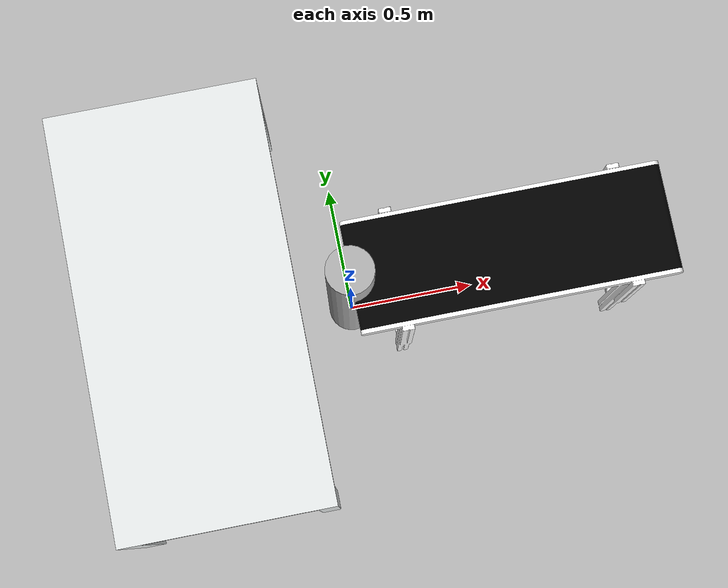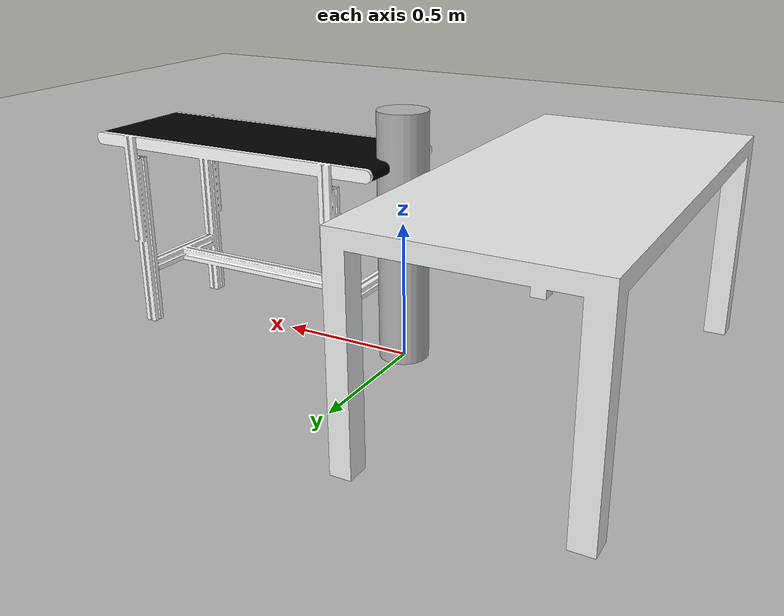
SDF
<?xml version="1.0" ?>
<sdf version="1.8">
  <world name="default">
    <!-- Plugins -->
    <plugin filename="gz-sim-physics-system" name="gz::sim::systems::Physics">
    </plugin>
    <plugin filename="gz-sim-user-commands-system" name="gz::sim::systems::UserCommands">
    </plugin>
    <plugin filename="gz-sim-scene-broadcaster-system" name="gz::sim::systems::SceneBroadcaster">
    </plugin>
    <plugin filename="gz-sim-sensors-system" name="gz::sim::systems::Sensors">
      <render_engine>ogre2</render_engine>
    </plugin>
    <plugin filename="libgz_link_attacher.so" name="gz_link_attacher::LinkAttacher">
      <robot_model_name>ur10_suction</robot_model_name>
      <gripper_link_name>ls_vgr_link</gripper_link_name>
    </plugin>

    <plugin filename="gz-sim-contact-system" name="gz::sim::systems::Contact">
    </plugin>

    <!-- Scene -->
    <scene>
      <ambient>0.4 0.4 0.4 1</ambient>
      <background>0.7 0.7 0.7 1</background>
      <shadows>true</shadows>
      <grid>false</grid>
    </scene>

    <!-- Light -->
    <light type="directional" name="sun">
      <cast_shadows>true</cast_shadows>
      <pose>0 0 10 0 0 0</pose>
      <diffuse>0.8 0.8 0.8 1</diffuse>
      <specular>0.2 0.2 0.2 1</specular>
      <direction>-0.5 0.1 -0.9</direction>
      <visualize>false</visualize>
    </light>

    <!-- Ground Plane -->
    <model name="ground_plane">
      <static>true</static>
      <link name="link">
        <collision name="collision">
          <geometry>
            <plane>
              <normal>0 0 1</normal>
              <size>100 100</size>
            </plane>
          </geometry>
        </collision>
        <visual name="visual">
          <geometry>
            <plane>
              <normal>0 0 1</normal>
              <size>100 100</size>
            </plane>
          </geometry>
          <material>
            <ambient>0.8 0.8 0.8 1</ambient>
            <diffuse>0.8 0.8 0.8 1</diffuse>
            <specular>0.8 0.8 0.8 1</specular>
          </material>
        </visual>
      </link>
    </model>

    <!-- Conveyor (moving belt, driven by TrackController; see CustomRobots/palletizing/models/conveyor_belt) -->
    <!-- Named "conveyor" so the command topic is /model/conveyor/link/link/track_cmd_vel -->
    <include>
      <uri>model://conveyor_belt</uri>
      <name>conveyor</name>
      <pose>0.6 0 0 0 0 1.57</pose>
    </include>

    <!-- Ground Logo Big -->
    <model name="ground_logo_big">
      <static>true</static>
      <pose>-0.5 0 0 0 0 1.57</pose>
      <link name="link">
        <visual name="visual">
          <pose>0 0 0.001 0 0 0</pose>
          <geometry>
            <mesh>
              <scale>1 1 1</scale>
              <uri>model://ground_logo_big/meshes/ground_logo.dae</uri>
            </mesh>
          </geometry>
        </visual>
      </link>
    </model>

    <!-- Pallet Table (target platform for stacking) -->
    <model name="target_table">
      <static>true</static>
      <pose>-0.6 0 0 0 0 1.57</pose>
      <link name="link">
        <visual name="visual">
          <pose>0 0 0.73 0 0 1.57</pose>
          <geometry>
            <mesh>
              <scale>1 1 1</scale>
              <uri>model://target_table/meshes/target_table.dae</uri>
            </mesh>
          </geometry>
        </visual>
        <collision name="collision_0">
          <pose>0 0 0.73 0 0 0</pose>
          <geometry>
            <box>
              <size>0.8 1.6 0.06</size>
            </box>
          </geometry>
        </collision>
      </link>
    </model>

    <!-- Robot Base (Placeholder) -->
    <model name="robotbase">
      <static>true</static>
      <pose>0 0 0 0 0 0</pose>
      <link name="link">
        <pose>0 0 0.45 0 0 0</pose>
        <visual name="visual">
          <geometry>
            <cylinder>
              <radius>0.09</radius>
              <length>0.9</length>
            </cylinder>
          </geometry>
          <material>
            <ambient>0.3 0.3 0.3 1</ambient>
            <diffuse>0.7 0.7 0.7 1</diffuse>
            <specular>0.01 0.01 0.01 1</specular>
          </material>
        </visual>
        <collision name="collision">
          <geometry>
            <cylinder>
              <radius>0.09</radius>
              <length>0.9</length>
            </cylinder>
          </geometry>
        </collision>
      </link>
    </model>

    <!-- Palletizing source boxes are spawned at runtime onto the moving belt -->
    <!-- by the box_spawner node (CustomRobots/palletizing/scripts/box_spawner.py), -->
    <!-- wired into Launchers/palletizing.launch.py. No static boxes here. -->

  </world>
</sdf>

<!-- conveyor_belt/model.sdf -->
<sdf version="1.9">

  <model name="conveyor_belt">

    <static>true</static>

    <link name="link">

      <pose>0 0 0 0 0 0</pose>

      <visual name="visual">

        <pose>0 0 0 0 0 0</pose>

        <geometry>
          <mesh>
            <uri>meshes/conveyor_belt.dae</uri>
          </mesh>
        </geometry>

      </visual>

      <collision name="collision">

        <pose>0 0 0.71 0 0 0</pose>

        <geometry>
          <box>
            <size>0.50 1.20 0.055</size>
          </box>
        </geometry>

        <surface>

          <contact>
            <ode>
              <kp>100000</kp>
              <kd>10</kd>
              <min_depth>0.001</min_depth>
              <max_vel>1.0</max_vel>
            </ode>
          </contact>

          <friction>
            <ode>

              <!--
                La cinta se mueve en el eje Y local.
              -->

              <fdir1>1 0 0</fdir1>

              <mu>2.0</mu>

              <mu2>0.5</mu2>

            </ode>
          </friction>

        </surface>

      </collision>

    </link>

    <!-- TRACK CONTROLLER                                       -->

    <plugin
      filename="gz-sim-track-controller-system"
      name="gz::sim::systems::TrackController">

      <link>link</link>

      <track_orientation>0 0 1.57079632679</track_orientation>

      <min_velocity>-1.0</min_velocity>

      <max_velocity>1.0</max_velocity>

    </plugin>

  </model>

</sdf>
